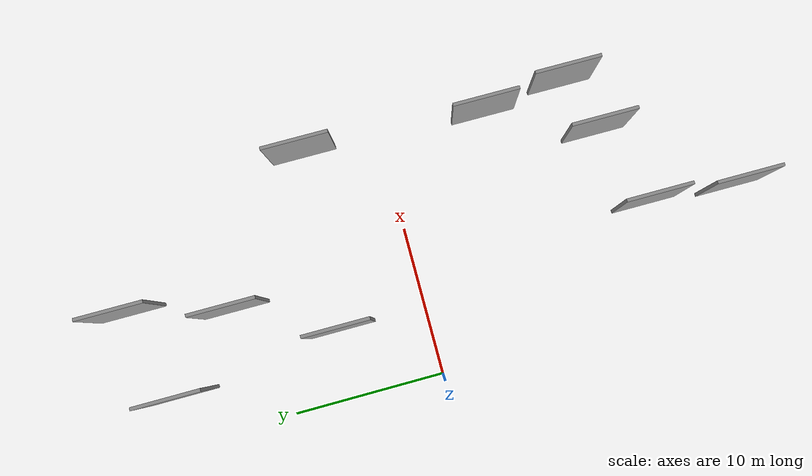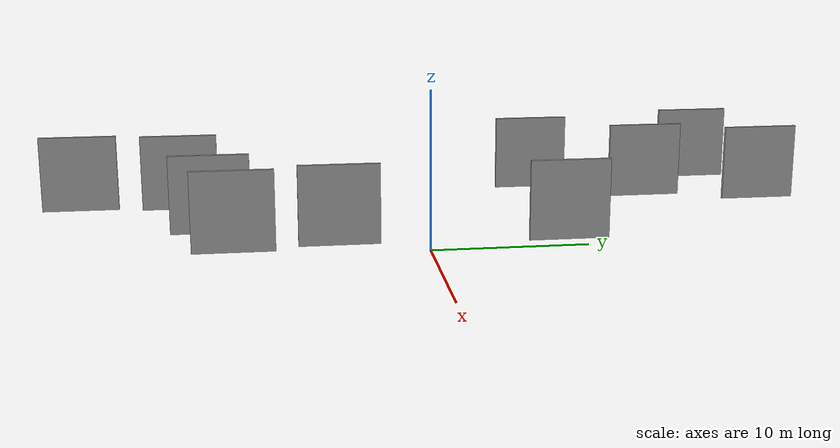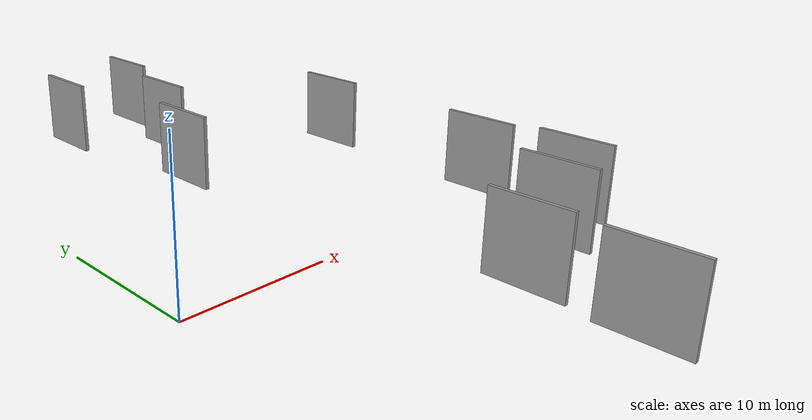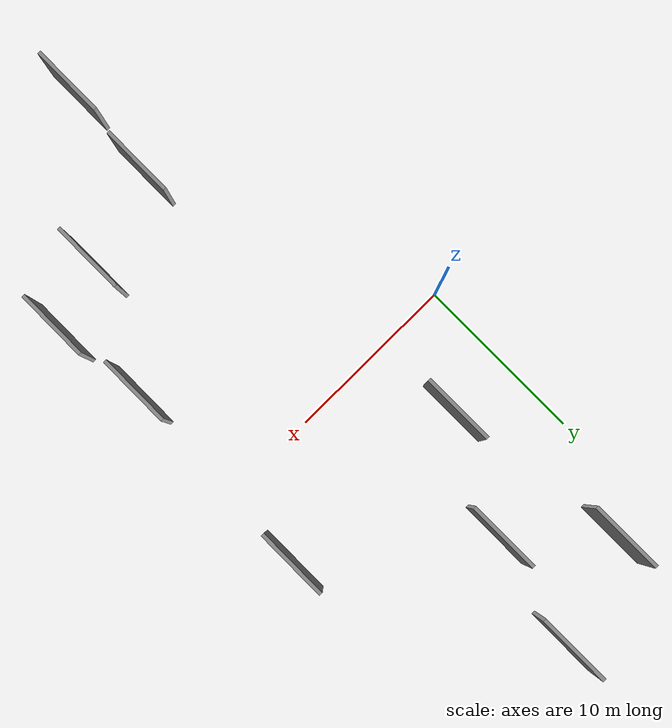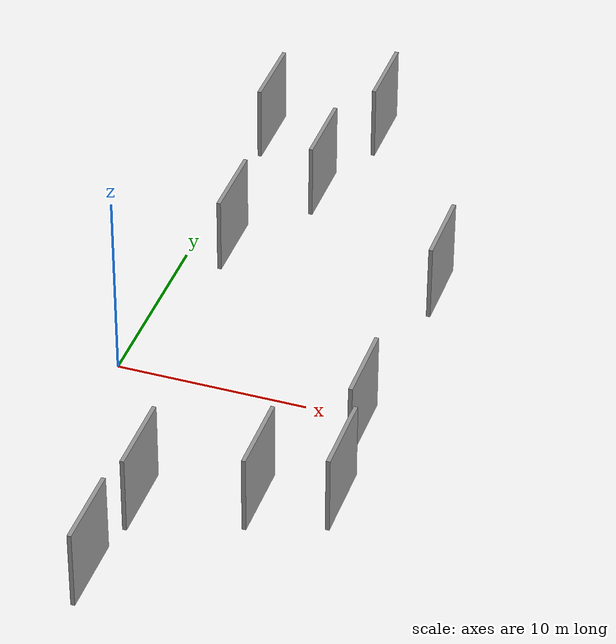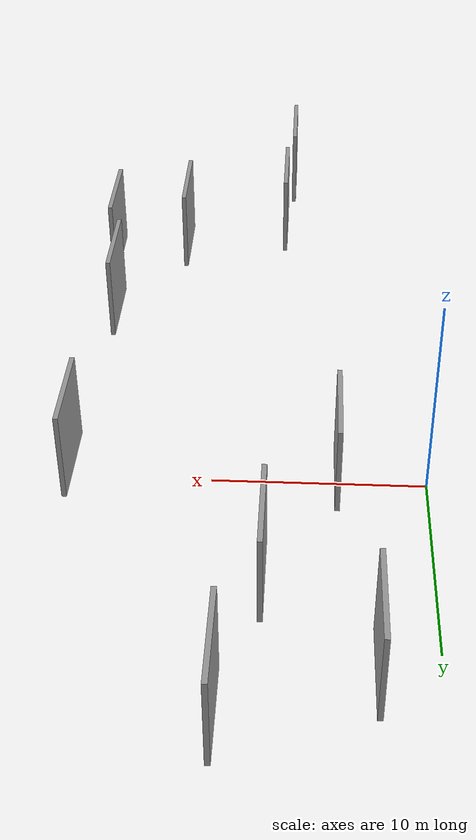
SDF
<sdf version="1.6">
 <world name="default">
  <scene>
   <sky><clouds><speed>12</speed></clouds></sky>
   <ambient>0.4 0.4 0.4 1</ambient>
   <background>0.7 0.7 0.7 1</background>
   <shadows>1</shadows>
  </scene>
  <gravity>0 0 -9.8066</gravity>
  <magnetic_field>6e-06 2.3e-05 -4.2e-05</magnetic_field>
  <physics default="0" name="default_physics" type="ode">
   <ode>
    <solver>
     <type>quick</type>
     <iters>10</iters>
     <sor>1.0</sor>
     <use_dynamic_moi_rescaling>0</use_dynamic_moi_rescaling>
    </solver>
    <constraints>
     <cfm>0</cfm>
     <erp>0.2</erp>
     <contact_max_correcting_vel>100</contact_max_correcting_vel>
     <contact_surface_layer>0.001</contact_surface_layer>
    </constraints>
   </ode>
   <max_step_size>0.004</max_step_size>
   <real_time_factor>1</real_time_factor>
   <real_time_update_rate>250</real_time_update_rate>
  </physics>
  <light name="sun" type="directional">
   <pose>0 0 10 0 0 0</pose>
   <diffuse>0.8 0.8 0.8 1</diffuse>
   <specular>0.2 0.2 0.2 1</specular>
   <attenuation>
    <range>1000</range>
    <constant>0.9</constant>
    <linear>0.01</linear>
    <quadratic>0.001</quadratic>
   </attenuation>
   <direction>-0.5 0.1 -0.9</direction>
  </light>
  <model name="grey_wall_1">
   <static>1</static>
   <pose>3.0127 15.1382 5.0 0.000000 0.000000 1.570796</pose>
   <link name="link">
    <pose>0 0 2.00 0 0 0</pose>
    <collision name="collision"><geometry><box><size>4.00 0.2 4.00</size></box></geometry></collision>
    <visual name="visual">
     <cast_shadows>0</cast_shadows>
     <geometry><box><size>4.00 0.2 4.00</size></box></geometry>
     <material>
      <script>
       <uri>model://grey_wall/materials/scripts</uri>
       <uri>model://grey_wall/materials/textures</uri>
       <name>vrc/grey_wall</name>
      </script>
     </material>
    </visual>
   </link>
  </model>
  <model name="grey_wall_2">
   <static>1</static>
   <pose>14.9075 -6.5436 5.0 0.000000 0.000000 1.570796</pose>
   <link name="link">
    <pose>0 0 2.00 0 0 0</pose>
    <collision name="collision"><geometry><box><size>4.00 0.2 4.00</size></box></geometry></collision>
    <visual name="visual">
     <cast_shadows>0</cast_shadows>
     <geometry><box><size>4.00 0.2 4.00</size></box></geometry>
     <material>
      <script>
       <uri>model://grey_wall/materials/scripts</uri>
       <uri>model://grey_wall/materials/textures</uri>
       <name>vrc/grey_wall</name>
      </script>
     </material>
    </visual>
   </link>
  </model>
  <model name="grey_wall_3">
   <static>1</static>
   <pose>4.3766 5.1248 5.0 0.000000 0.000000 1.570796</pose>
   <link name="link">
    <pose>0 0 2.00 0 0 0</pose>
    <collision name="collision"><geometry><box><size>4.00 0.2 4.00</size></box></geometry></collision>
    <visual name="visual">
     <cast_shadows>0</cast_shadows>
     <geometry><box><size>4.00 0.2 4.00</size></box></geometry>
     <material>
      <script>
       <uri>model://grey_wall/materials/scripts</uri>
       <uri>model://grey_wall/materials/textures</uri>
       <name>vrc/grey_wall</name>
      </script>
     </material>
    </visual>
   </link>
  </model>
  <model name="grey_wall_4">
   <static>1</static>
   <pose>8.6058 17.1221 5.0 0.000000 0.000000 1.570796</pose>
   <link name="link">
    <pose>0 0 2.00 0 0 0</pose>
    <collision name="collision"><geometry><box><size>4.00 0.2 4.00</size></box></geometry></collision>
    <visual name="visual">
     <cast_shadows>0</cast_shadows>
     <geometry><box><size>4.00 0.2 4.00</size></box></geometry>
     <material>
      <script>
       <uri>model://grey_wall/materials/scripts</uri>
       <uri>model://grey_wall/materials/textures</uri>
       <name>vrc/grey_wall</name>
      </script>
     </material>
    </visual>
   </link>
  </model>
  <model name="grey_wall_5">
   <static>1</static>
   <pose>15.3285 4.7632 5.0 0.000000 0.000000 1.570796</pose>
   <link name="link">
    <pose>0 0 2.00 0 0 0</pose>
    <collision name="collision"><geometry><box><size>4.00 0.2 4.00</size></box></geometry></collision>
    <visual name="visual">
     <cast_shadows>0</cast_shadows>
     <geometry><box><size>4.00 0.2 4.00</size></box></geometry>
     <material>
      <script>
       <uri>model://grey_wall/materials/scripts</uri>
       <uri>model://grey_wall/materials/textures</uri>
       <name>vrc/grey_wall</name>
      </script>
     </material>
    </visual>
   </link>
  </model>
  <model name="grey_wall_6">
   <static>1</static>
   <pose>15.5152 -11.6379 5.0 0.000000 0.000000 1.570796</pose>
   <link name="link">
    <pose>0 0 2.00 0 0 0</pose>
    <collision name="collision"><geometry><box><size>4.00 0.2 4.00</size></box></geometry></collision>
    <visual name="visual">
     <cast_shadows>0</cast_shadows>
     <geometry><box><size>4.00 0.2 4.00</size></box></geometry>
     <material>
      <script>
       <uri>model://grey_wall/materials/scripts</uri>
       <uri>model://grey_wall/materials/textures</uri>
       <name>vrc/grey_wall</name>
      </script>
     </material>
    </visual>
   </link>
  </model>
  <model name="grey_wall_7">
   <static>1</static>
   <pose>6.6162 -19.8350 5.0 0.000000 0.000000 1.570796</pose>
   <link name="link">
    <pose>0 0 2.00 0 0 0</pose>
    <collision name="collision"><geometry><box><size>4.00 0.2 4.00</size></box></geometry></collision>
    <visual name="visual">
     <cast_shadows>0</cast_shadows>
     <geometry><box><size>4.00 0.2 4.00</size></box></geometry>
     <material>
      <script>
       <uri>model://grey_wall/materials/scripts</uri>
       <uri>model://grey_wall/materials/textures</uri>
       <name>vrc/grey_wall</name>
      </script>
     </material>
    </visual>
   </link>
  </model>
  <model name="grey_wall_8">
   <static>1</static>
   <pose>7.1904 11.0174 5.0 0.000000 0.000000 1.570796</pose>
   <link name="link">
    <pose>0 0 2.00 0 0 0</pose>
    <collision name="collision"><geometry><box><size>4.00 0.2 4.00</size></box></geometry></collision>
    <visual name="visual">
     <cast_shadows>0</cast_shadows>
     <geometry><box><size>4.00 0.2 4.00</size></box></geometry>
     <material>
      <script>
       <uri>model://grey_wall/materials/scripts</uri>
       <uri>model://grey_wall/materials/textures</uri>
       <name>vrc/grey_wall</name>
      </script>
     </material>
    </visual>
   </link>
  </model>
  <model name="grey_wall_9">
   <static>1</static>
   <pose>11.9935 -12.8181 5.0 0.000000 0.000000 1.570796</pose>
   <link name="link">
    <pose>0 0 2.00 0 0 0</pose>
    <collision name="collision"><geometry><box><size>4.00 0.2 4.00</size></box></geometry></collision>
    <visual name="visual">
     <cast_shadows>0</cast_shadows>
     <geometry><box><size>4.00 0.2 4.00</size></box></geometry>
     <material>
      <script>
       <uri>model://grey_wall/materials/scripts</uri>
       <uri>model://grey_wall/materials/textures</uri>
       <name>vrc/grey_wall</name>
      </script>
     </material>
    </visual>
   </link>
  </model>
  <model name="grey_wall_10">
   <static>1</static>
   <pose>6.9668 -14.5658 5.0 0.000000 0.000000 1.570796</pose>
   <link name="link">
    <pose>0 0 2.00 0 0 0</pose>
    <collision name="collision"><geometry><box><size>4.00 0.2 4.00</size></box></geometry></collision>
    <visual name="visual">
     <cast_shadows>0</cast_shadows>
     <geometry><box><size>4.00 0.2 4.00</size></box></geometry>
     <material>
      <script>
       <uri>model://grey_wall/materials/scripts</uri>
       <uri>model://grey_wall/materials/textures</uri>
       <name>vrc/grey_wall</name>
      </script>
     </material>
    </visual>
   </link>
  </model>
 </world>
</sdf>
